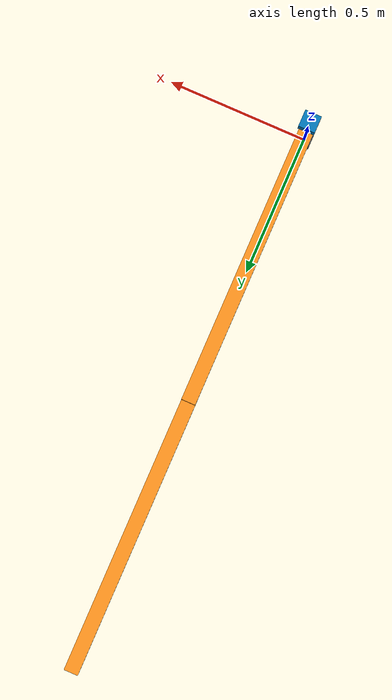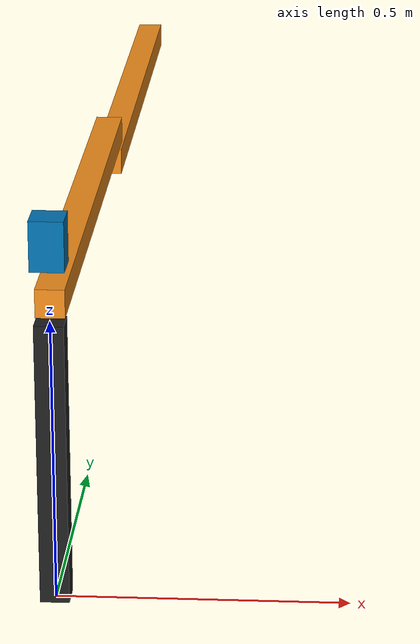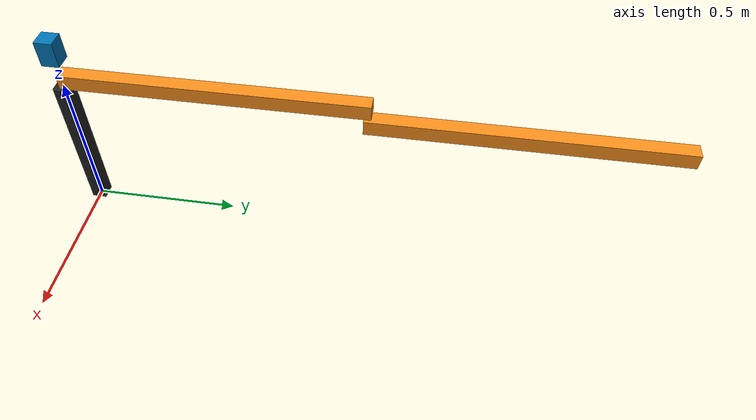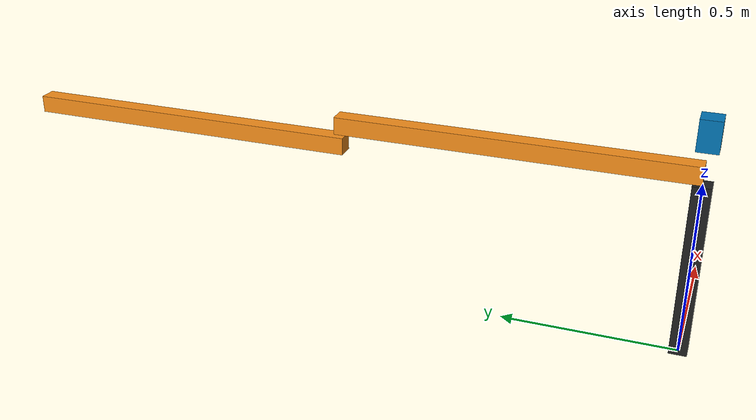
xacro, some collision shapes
<?xml version="1.0"?>
<!-- Revolute-Revolute Manipulator -->
<robot name="me604" xmlns:xacro="http://www.ros.org/wiki/xacro">

  <!-- Constants for robot dimensions -->
  <xacro:property name="mass" value="1"      /> <!-- arbitrary value for mass -->
  <xacro:property name="width" value="0.05"  /> <!-- Square dimensions (widthxwidth) of beams -->
  <xacro:property name="height1" value="0.5" /> <!-- Link 0 -->
  <xacro:property name="length1" value="1" /> <!-- Link 1 -->
  <xacro:property name="length2" value="1" /> <!-- Link 2s -->

  <xacro:include filename="$(find arm_description)/urdf/arm.gazebo" />
  <xacro:include filename="$(find arm_description)/urdf/materials.xacro" />
  <xacro:include filename="$(find arm_description)/urdf/link.xacro" />

  <!-- Used for fixing robot to Gazebo 'base_link' -->
  <link name="world"/>
  <joint name="fixed" type="fixed">
    <parent link="world"/>
    <child link="link0"/>
  </joint>

  <!-- Base Link -->
  <xacro:link0 name="link0" height1="${height1}" width="${width}" mass="${mass/6}"/>
  <!-- Links of the manipulator -->
  <xacro:link_arm name="link1" length="${length1}" width="${width}" mass="${mass}"/>
  <xacro:link_arm name="link2" length="${length2}" width="${width}" mass="${mass}"/>

  <!-- Joints of the manipulator -->
  <joint name="joint1" type="continuous">
    <parent link="link0"/>
    <child link="link1"/>
    <origin xyz="0 0 ${height1 +0.03}" rpy="0 0 0"/>
    <axis xyz="0 0 1"/>
    <dynamics damping="0.7"/>
  </joint>

   <joint name="joint2" type="continuous">
    <parent link="link1"/>
    <child link="link2"/>
    <origin xyz="0 ${length1 - 0.025} ${-width-0.01}" rpy="0 0 0"/>
    <axis xyz="0 0 1"/>
    <dynamics damping="0.7"/>
  </joint>

  <transmission name="tran1">
    <type>transmission_interface/SimpleTransmission</type>
    <joint name="joint1">
      <hardwareInterface>hardware_interface/EffortJointInterface</hardwareInterface>
    </joint>
    <actuator name="motor1">
      <hardwareInterface>hardware_interface/EffortJointInterface</hardwareInterface>
      <mechanicalReduction>1</mechanicalReduction>
    </actuator>
  </transmission>

  <transmission name="tran2">
    <type>transmission_interface/SimpleTransmission</type>
    <joint name="joint2">
      <hardwareInterface>hardware_interface/EffortJointInterface</hardwareInterface>
    </joint>
    <actuator name="motor2">
      <hardwareInterface>hardware_interface/EffortJointInterface</hardwareInterface>
      <mechanicalReduction>1</mechanicalReduction>
    </actuator>
  </transmission>

   <joint name="hokuyo_joint" type="fixed">
    <origin rpy="0 0 0" xyz="0.0 0.0 ${height1 + width +0.1}"/>
    <parent link="link0"/>
    <child link="hokuyo_link"/>
  </joint>

  <link name="hokuyo_link">
    <inertial>
      <mass value="0.270"/>
      <origin rpy="0 0 0" xyz="0 0 0"/>
      <inertia ixx="2.632e-4" ixy="0" ixz="0" iyy="2.632e-4" iyz="0" izz="1.62e-4"/>
    </inertial>
    <visual>
      <origin rpy="0 0 0" xyz="0 0 0"/>
      <geometry>
        <mesh filename="package://hector_sensors_description/meshes/hokuyo_utm30lx/hokuyo_utm_30lx.dae"/>
      </geometry>
    </visual>
    <collision>
      <origin rpy="0 0 0" xyz="0 0 -0.0115"/>
      <geometry>
        <box size="0.058 0.058 0.087"/>
      </geometry>
    </collision>
  </link>

</robot>

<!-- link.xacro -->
<robot name="me604" xmlns:xacro="https://www.ros.org/wiki/xacro" >
<!-- 	Link 0 that is support to raise the arm above groun -->
	<xacro:macro name="link0" params="name height1 width mass">
		<link name="${name}">
    	<collision>
      		<origin xyz="0 0 ${height1/2}" rpy="0 0 0"/>
      		<geometry>
 	  		<box size="${width} ${width} ${height1}"/>
      		</geometry>
    	</collision>
    	<visual>
      		<origin xyz="0 0 ${height1/2}" rpy="0 0 0"/>
      		<geometry>
 	 			<box size="${width} ${width} ${height1}"/>
      		</geometry>
      		<material name="Black"/>
   	 	</visual>
    	<inertial>
      		<origin xyz="0 0 ${height1/2}" rpy="0 0 0"/>
      		<mass value="${mass}"/>
      		<inertia
    		ixx="${mass / 12.0 * (width*width + height1*height1)}" ixy="0.0" ixz="0.0"
    		iyy="${mass / 12.0 * (height1*height1 + width*width)}" iyz="0.0"
    		izz="${mass / 12.0 * (width*width + width*width)}"/>
    	</inertial>
  		</link>
	</xacro:macro>

	<xacro:macro name="link_arm" params="name length width mass">
		<link name="${name}">
    		<collision>
      			<origin xyz="0 ${length/2} 0" rpy="0 0 0"/>
      			<geometry>
					<box size="${width} ${length} ${width}"/>
      			</geometry>
    		</collision>

    		<visual>
       			<origin xyz="0 ${length/2} 0" rpy="0 0 0"/>
      			<geometry>
  					<box size="${width} ${length} ${width}"/>
      			</geometry>
      			<material name="orange"/>
    		</visual>

    		<inertial>
      			<origin xyz="0 ${length/2} 0" rpy="0 0 0"/>
      			<mass value="${mass}"/>
      			<inertia
	  			ixx="${mass / 12.0 * (width*width + length*length)}" ixy="0.0" ixz="0.0"
	  			izz="${mass / 12.0 * (length*length + width*width)}" iyz="0.0"
	  			iyy="${mass / 12.0 * (width*width + width*width)}"/>
    		</inertial>
  		</link>
    </xacro:macro>
</robot>
